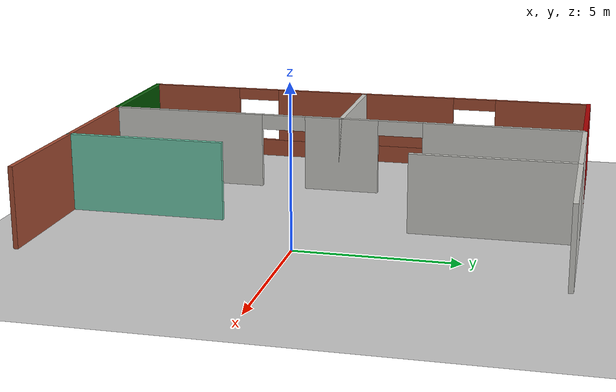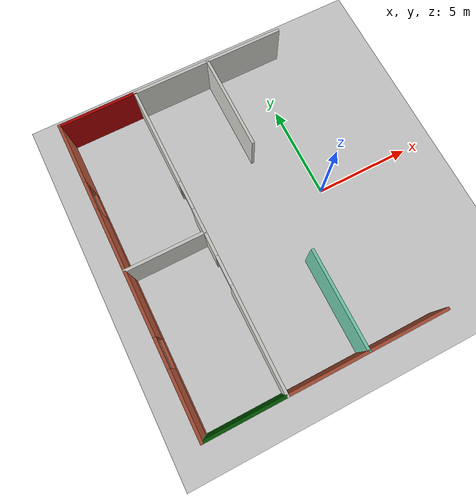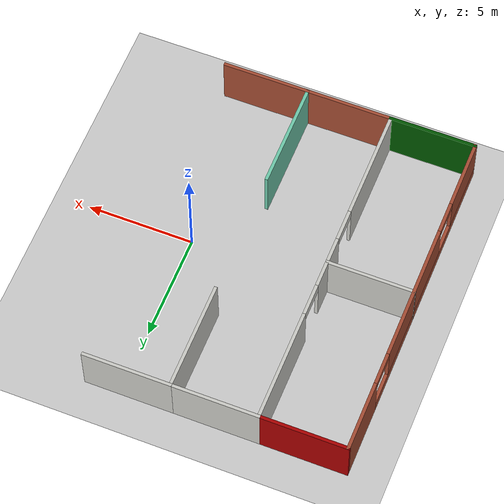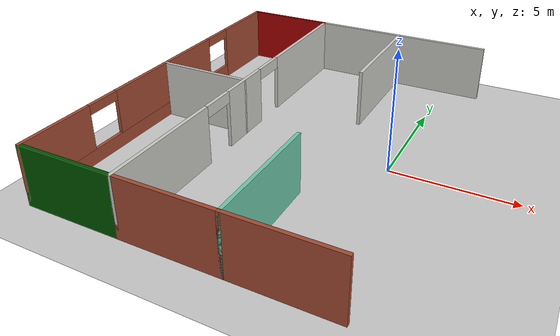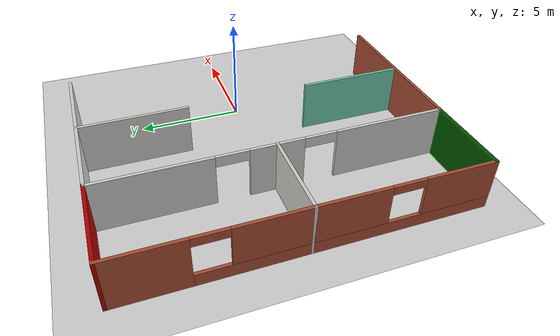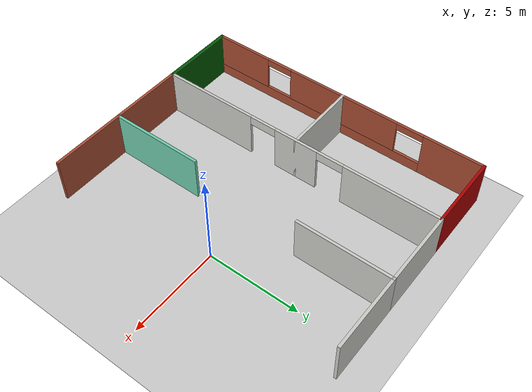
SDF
<sdf version="1.6">
 <world name="default">
  <model name="ground_plane">
   <static>1</static>
   <link name="link">
    <collision name="collision">
     <geometry><plane><normal>0 0 1</normal><size>100 100</size></plane></geometry>
     <surface>
      <contact><collide_bitmask>65535</collide_bitmask></contact>
      <friction><ode><mu>100</mu><mu2>50</mu2></ode></friction>
     </surface>
    </collision>
    <visual name="visual">
     <cast_shadows>0</cast_shadows>
     <geometry><plane><normal>0 0 1</normal><size>100 100</size></plane></geometry>
     <material>
      <script><uri>file://media/materials/scripts/gazebo.material</uri><name>Gazebo/Grey</name></script>
     </material>
    </visual>
   </link>
  </model>
  <model name="Project_building">
   <link name="Wall_0">
    <pose>-8 8 0 0 -0 3.14159</pose>
    <visual name="Wall_0_Visual">
     <pose>0 0 1.25 0 -0 0</pose>
     <geometry><box><size>4.15 0.15 2.5</size></box></geometry>
     <material>
      <script><uri>file://media/materials/scripts/gazebo.material</uri><name>Gazebo/Grey</name></script>
      <ambient>0.666667 0 0 1</ambient>
      <shader type="pixel"/>
      <diffuse>0.7 0.7 0.7 1</diffuse>
      <specular>0.01 0.01 0.01 1</specular>
      <emissive>0 0 0 1</emissive>
     </material>
     <meta><layer>0</layer></meta>
    </visual>
    <collision name="Wall_0_Collision">
     <pose>0 0 1.25 0 -0 0</pose>
     <geometry><box><size>4.15 0.15 2.5</size></box></geometry>
     <surface>
      <friction>
       <ode><mu>1</mu><mu2>1</mu2><fdir1>0 0 0</fdir1><slip1>0</slip1><slip2>0</slip2></ode>
       <torsional>
        <coefficient>1</coefficient>
        <patch_radius>0</patch_radius>
        <surface_radius>0</surface_radius>
        <use_patch_radius>1</use_patch_radius>
        <ode><slip>0</slip></ode>
       </torsional>
      </friction>
      <bounce><restitution_coefficient>0</restitution_coefficient><threshold>1e+06</threshold></bounce>
      <contact>
       <collide_without_contact>0</collide_without_contact>
       <collide_without_contact_bitmask>1</collide_without_contact_bitmask>
       <collide_bitmask>1</collide_bitmask>
       <ode>
        <soft_cfm>0</soft_cfm>
        <soft_erp>0.2</soft_erp>
        <kp>1e+13</kp>
        <kd>1</kd>
        <max_vel>0.01</max_vel>
        <min_depth>0</min_depth>
       </ode>
       <bullet>
        <split_impulse>1</split_impulse>
        <split_impulse_penetration_threshold>-0.01</split_impulse_penetration_threshold>
        <soft_cfm>0</soft_cfm>
        <soft_erp>0.2</soft_erp>
        <kp>1e+13</kp>
        <kd>1</kd>
       </bullet>
      </contact>
     </surface>
    </collision>
   </link>
   <link name="Wall_10">
    <pose>-8 -8 0 0 -0 0</pose>
    <visual name="Wall_10_Visual">
     <pose>0 0 1.25 0 -0 0</pose>
     <geometry><box><size>4.15 0.15 2.5</size></box></geometry>
     <material>
      <script><uri>file://media/materials/scripts/gazebo.material</uri><name>Gazebo/Grey</name></script>
      <ambient>0 0.333333 0 1</ambient>
      <shader type="pixel"/>
      <diffuse>0.7 0.7 0.7 1</diffuse>
      <specular>0.01 0.01 0.01 1</specular>
      <emissive>0 0 0 1</emissive>
     </material>
     <meta><layer>0</layer></meta>
    </visual>
    <collision name="Wall_10_Collision">
     <pose>0 0 1.25 0 -0 0</pose>
     <geometry><box><size>4.15 0.15 2.5</size></box></geometry>
     <surface>
      <friction>
       <ode><mu>1</mu><mu2>1</mu2><fdir1>0 0 0</fdir1><slip1>0</slip1><slip2>0</slip2></ode>
       <torsional>
        <coefficient>1</coefficient>
        <patch_radius>0</patch_radius>
        <surface_radius>0</surface_radius>
        <use_patch_radius>1</use_patch_radius>
        <ode><slip>0</slip></ode>
       </torsional>
      </friction>
      <bounce><restitution_coefficient>0</restitution_coefficient><threshold>1e+06</threshold></bounce>
      <contact>
       <collide_without_contact>0</collide_without_contact>
       <collide_without_contact_bitmask>1</collide_without_contact_bitmask>
       <collide_bitmask>1</collide_bitmask>
       <ode>
        <soft_cfm>0</soft_cfm>
        <soft_erp>0.2</soft_erp>
        <kp>1e+13</kp>
        <kd>1</kd>
        <max_vel>0.01</max_vel>
        <min_depth>0</min_depth>
       </ode>
       <bullet>
        <split_impulse>1</split_impulse>
        <split_impulse_penetration_threshold>-0.01</split_impulse_penetration_threshold>
        <soft_cfm>0</soft_cfm>
        <soft_erp>0.2</soft_erp>
        <kp>1e+13</kp>
        <kd>1</kd>
       </bullet>
      </contact>
     </surface>
    </collision>
   </link>
   <link name="Wall_12">
    <pose>-4 -8 0 0 -0 0</pose>
    <visual name="Wall_12_Visual">
     <pose>0 0 1.25 0 -0 0</pose>
     <geometry><box><size>4.15 0.15 2.5</size></box></geometry>
     <material>
      <script><uri>file://media/materials/scripts/gazebo.material</uri><name>Gazebo/Bricks</name></script>
      <ambient>0.333333 0 0 1</ambient>
      <shader type="pixel"/>
      <diffuse>1 1 1 1</diffuse>
      <specular>0.2 0.2 0.2 1</specular>
      <emissive>0 0 0 1</emissive>
     </material>
     <meta><layer>0</layer></meta>
    </visual>
    <collision name="Wall_12_Collision">
     <pose>0 0 1.25 0 -0 0</pose>
     <geometry><box><size>4.15 0.15 2.5</size></box></geometry>
     <surface>
      <friction>
       <ode><mu>1</mu><mu2>1</mu2><fdir1>0 0 0</fdir1><slip1>0</slip1><slip2>0</slip2></ode>
       <torsional>
        <coefficient>1</coefficient>
        <patch_radius>0</patch_radius>
        <surface_radius>0</surface_radius>
        <use_patch_radius>1</use_patch_radius>
        <ode><slip>0</slip></ode>
       </torsional>
      </friction>
      <bounce><restitution_coefficient>0</restitution_coefficient><threshold>1e+06</threshold></bounce>
      <contact>
       <collide_without_contact>0</collide_without_contact>
       <collide_without_contact_bitmask>1</collide_without_contact_bitmask>
       <collide_bitmask>1</collide_bitmask>
       <ode>
        <soft_cfm>0</soft_cfm>
        <soft_erp>0.2</soft_erp>
        <kp>1e+13</kp>
        <kd>1</kd>
        <max_vel>0.01</max_vel>
        <min_depth>0</min_depth>
       </ode>
       <bullet>
        <split_impulse>1</split_impulse>
        <split_impulse_penetration_threshold>-0.01</split_impulse_penetration_threshold>
        <soft_cfm>0</soft_cfm>
        <soft_erp>0.2</soft_erp>
        <kp>1e+13</kp>
        <kd>1</kd>
       </bullet>
      </contact>
     </surface>
    </collision>
   </link>
   <link name="Wall_14">
    <pose>0 -8 0 0 -0 0</pose>
    <visual name="Wall_14_Visual">
     <pose>0 0 1.25 0 -0 0</pose>
     <geometry><box><size>4.15 0.15 2.5</size></box></geometry>
     <material>
      <script><uri>file://media/materials/scripts/gazebo.material</uri><name>Gazebo/Bricks</name></script>
      <ambient>1 1 1 1</ambient>
      <shader type="pixel"/>
      <diffuse>1 1 1 1</diffuse>
      <specular>0.2 0.2 0.2 1</specular>
      <emissive>0 0 0 1</emissive>
     </material>
     <meta><layer>0</layer></meta>
    </visual>
    <collision name="Wall_14_Collision">
     <pose>0 0 1.25 0 -0 0</pose>
     <geometry><box><size>4.15 0.15 2.5</size></box></geometry>
     <surface>
      <friction>
       <ode><mu>1</mu><mu2>1</mu2><fdir1>0 0 0</fdir1><slip1>0</slip1><slip2>0</slip2></ode>
       <torsional>
        <coefficient>1</coefficient>
        <patch_radius>0</patch_radius>
        <surface_radius>0</surface_radius>
        <use_patch_radius>1</use_patch_radius>
        <ode><slip>0</slip></ode>
       </torsional>
      </friction>
      <bounce><restitution_coefficient>0</restitution_coefficient><threshold>1e+06</threshold></bounce>
      <contact>
       <collide_without_contact>0</collide_without_contact>
       <collide_without_contact_bitmask>1</collide_without_contact_bitmask>
       <collide_bitmask>1</collide_bitmask>
       <ode>
        <soft_cfm>0</soft_cfm>
        <soft_erp>0.2</soft_erp>
        <kp>1e+13</kp>
        <kd>1</kd>
        <max_vel>0.01</max_vel>
        <min_depth>0</min_depth>
       </ode>
       <bullet>
        <split_impulse>1</split_impulse>
        <split_impulse_penetration_threshold>-0.01</split_impulse_penetration_threshold>
        <soft_cfm>0</soft_cfm>
        <soft_erp>0.2</soft_erp>
        <kp>1e+13</kp>
        <kd>1</kd>
       </bullet>
      </contact>
     </surface>
    </collision>
   </link>
   <link name="Wall_2">
    <pose>-4 8 0 0 -0 3.14159</pose>
    <visual name="Wall_2_Visual">
     <pose>0 0 1.25 0 -0 0</pose>
     <geometry><box><size>4.15 0.15 2.5</size></box></geometry>
     <material>
      <script><uri>file://media/materials/scripts/gazebo.material</uri><name>Gazebo/CeilingTiled</name></script>
      <ambient>0 0 0.498039 1</ambient>
      <shader type="pixel"/>
      <diffuse>1 1 1 1</diffuse>
      <specular>0 0 0 1</specular>
      <emissive>0 0 0 1</emissive>
     </material>
     <meta><layer>0</layer></meta>
    </visual>
    <collision name="Wall_2_Collision">
     <pose>0 0 1.25 0 -0 0</pose>
     <geometry><box><size>4.15 0.15 2.5</size></box></geometry>
     <surface>
      <friction>
       <ode><mu>1</mu><mu2>1</mu2><fdir1>0 0 0</fdir1><slip1>0</slip1><slip2>0</slip2></ode>
       <torsional>
        <coefficient>1</coefficient>
        <patch_radius>0</patch_radius>
        <surface_radius>0</surface_radius>
        <use_patch_radius>1</use_patch_radius>
        <ode><slip>0</slip></ode>
       </torsional>
      </friction>
      <bounce><restitution_coefficient>0</restitution_coefficient><threshold>1e+06</threshold></bounce>
      <contact>
       <collide_without_contact>0</collide_without_contact>
       <collide_without_contact_bitmask>1</collide_without_contact_bitmask>
       <collide_bitmask>1</collide_bitmask>
       <ode>
        <soft_cfm>0</soft_cfm>
        <soft_erp>0.2</soft_erp>
        <kp>1e+13</kp>
        <kd>1</kd>
        <max_vel>0.01</max_vel>
        <min_depth>0</min_depth>
       </ode>
       <bullet>
        <split_impulse>1</split_impulse>
        <split_impulse_penetration_threshold>-0.01</split_impulse_penetration_threshold>
        <soft_cfm>0</soft_cfm>
        <soft_erp>0.2</soft_erp>
        <kp>1e+13</kp>
        <kd>1</kd>
       </bullet>
      </contact>
     </surface>
    </collision>
   </link>
   <link name="Wall_22">
    <pose>-10 0 0 0 0 -1.5708</pose>
    <visual name="Wall_22_Visual_0">
     <pose>-6.4125 0 1.25 0 -0 0</pose>
     <geometry><box><size>3.325 0.15 2.5</size></box></geometry>
     <material>
      <script><uri>file://media/materials/scripts/gazebo.material</uri><name>Gazebo/Bricks</name></script>
      <ambient>1 1 1 1</ambient>
      <shader type="pixel"/>
      <diffuse>1 1 1 1</diffuse>
      <specular>0.2 0.2 0.2 1</specular>
      <emissive>0 0 0 1</emissive>
     </material>
     <meta><layer>0</layer></meta>
    </visual>
    <visual name="Wall_22_Visual_1">
     <pose>1.6625 0 0.3 0 -0 0</pose>
     <geometry><box><size>12.825 0.15 0.6</size></box></geometry>
     <material>
      <script><uri>file://media/materials/scripts/gazebo.material</uri><name>Gazebo/Bricks</name></script>
      <ambient>1 1 1 1</ambient>
      <shader type="pixel"/>
      <diffuse>1 1 1 1</diffuse>
      <specular>0.2 0.2 0.2 1</specular>
      <emissive>0 0 0 1</emissive>
     </material>
     <meta><layer>0</layer></meta>
    </visual>
    <visual name="Wall_22_Visual_2">
     <pose>0 0 1.55 0 -0 0</pose>
     <geometry><box><size>6.5 0.15 1.9</size></box></geometry>
     <material>
      <script><uri>file://media/materials/scripts/gazebo.material</uri><name>Gazebo/Bricks</name></script>
      <ambient>1 1 1 1</ambient>
      <shader type="pixel"/>
      <diffuse>1 1 1 1</diffuse>
      <specular>0.2 0.2 0.2 1</specular>
      <emissive>0 0 0 1</emissive>
     </material>
     <meta><layer>0</layer></meta>
    </visual>
    <visual name="Wall_22_Visual_3">
     <pose>6.4125 0 1.55 0 -0 0</pose>
     <geometry><box><size>3.325 0.15 1.9</size></box></geometry>
     <material>
      <script><uri>file://media/materials/scripts/gazebo.material</uri><name>Gazebo/Bricks</name></script>
      <ambient>1 1 1 1</ambient>
      <shader type="pixel"/>
      <diffuse>1 1 1 1</diffuse>
      <specular>0.2 0.2 0.2 1</specular>
      <emissive>0 0 0 1</emissive>
     </material>
     <meta><layer>0</layer></meta>
    </visual>
    <visual name="Wall_22_Visual_4">
     <pose>-4 0 2.3 0 -0 0</pose>
     <geometry><box><size>1.5 0.15 0.4</size></box></geometry>
     <material>
      <script><uri>file://media/materials/scripts/gazebo.material</uri><name>Gazebo/Bricks</name></script>
      <ambient>1 1 1 1</ambient>
      <shader type="pixel"/>
      <diffuse>1 1 1 1</diffuse>
      <specular>0.2 0.2 0.2 1</specular>
      <emissive>0 0 0 1</emissive>
     </material>
     <meta><layer>0</layer></meta>
    </visual>
    <visual name="Wall_22_Visual_5">
     <pose>4 0 2.3 0 -0 0</pose>
     <geometry><box><size>1.5 0.15 0.4</size></box></geometry>
     <material>
      <script><uri>file://media/materials/scripts/gazebo.material</uri><name>Gazebo/Bricks</name></script>
      <ambient>1 1 1 1</ambient>
      <shader type="pixel"/>
      <diffuse>1 1 1 1</diffuse>
      <specular>0.2 0.2 0.2 1</specular>
      <emissive>0 0 0 1</emissive>
     </material>
     <meta><layer>0</layer></meta>
    </visual>
    <collision name="Wall_22_Collision_0">
     <pose>-6.4125 0 1.25 0 -0 0</pose>
     <geometry><box><size>3.325 0.15 2.5</size></box></geometry>
     <surface>
      <friction>
       <ode><mu>1</mu><mu2>1</mu2><fdir1>0 0 0</fdir1><slip1>0</slip1><slip2>0</slip2></ode>
       <torsional>
        <coefficient>1</coefficient>
        <patch_radius>0</patch_radius>
        <surface_radius>0</surface_radius>
        <use_patch_radius>1</use_patch_radius>
        <ode><slip>0</slip></ode>
       </torsional>
      </friction>
      <bounce><restitution_coefficient>0</restitution_coefficient><threshold>1e+06</threshold></bounce>
      <contact>
       <collide_without_contact>0</collide_without_contact>
       <collide_without_contact_bitmask>1</collide_without_contact_bitmask>
       <collide_bitmask>1</collide_bitmask>
       <ode>
        <soft_cfm>0</soft_cfm>
        <soft_erp>0.2</soft_erp>
        <kp>1e+13</kp>
        <kd>1</kd>
        <max_vel>0.01</max_vel>
        <min_depth>0</min_depth>
       </ode>
       <bullet>
        <split_impulse>1</split_impulse>
        <split_impulse_penetration_threshold>-0.01</split_impulse_penetration_threshold>
        <soft_cfm>0</soft_cfm>
        <soft_erp>0.2</soft_erp>
        <kp>1e+13</kp>
        <kd>1</kd>
       </bullet>
      </contact>
     </surface>
    </collision>
    <collision name="Wall_22_Collision_1">
     <pose>1.6625 0 0.3 0 -0 0</pose>
     <geometry><box><size>12.825 0.15 0.6</size></box></geometry>
     <surface>
      <friction>
       <ode><mu>1</mu><mu2>1</mu2><fdir1>0 0 0</fdir1><slip1>0</slip1><slip2>0</slip2></ode>
       <torsional>
        <coefficient>1</coefficient>
        <patch_radius>0</patch_radius>
        <surface_radius>0</surface_radius>
        <use_patch_radius>1</use_patch_radius>
        <ode><slip>0</slip></ode>
       </torsional>
      </friction>
      <bounce><restitution_coefficient>0</restitution_coefficient><threshold>1e+06</threshold></bounce>
      <contact>
       <collide_without_contact>0</collide_without_contact>
       <collide_without_contact_bitmask>1</collide_without_contact_bitmask>
       <collide_bitmask>1</collide_bitmask>
       <ode>
        <soft_cfm>0</soft_cfm>
        <soft_erp>0.2</soft_erp>
        <kp>1e+13</kp>
        <kd>1</kd>
        <max_vel>0.01</max_vel>
        <min_depth>0</min_depth>
       </ode>
       <bullet>
        <split_impulse>1</split_impulse>
        <split_impulse_penetration_threshold>-0.01</split_impulse_penetration_threshold>
        <soft_cfm>0</soft_cfm>
        <soft_erp>0.2</soft_erp>
        <kp>1e+13</kp>
        <kd>1</kd>
       </bullet>
      </contact>
     </surface>
    </collision>
    <collision name="Wall_22_Collision_2">
     <pose>0 0 1.55 0 -0 0</pose>
     <geometry><box><size>6.5 0.15 1.9</size></box></geometry>
     <surface>
      <friction>
       <ode><mu>1</mu><mu2>1</mu2><fdir1>0 0 0</fdir1><slip1>0</slip1><slip2>0</slip2></ode>
       <torsional>
        <coefficient>1</coefficient>
        <patch_radius>0</patch_radius>
        <surface_radius>0</surface_radius>
        <use_patch_radius>1</use_patch_radius>
        <ode><slip>0</slip></ode>
       </torsional>
      </friction>
      <bounce><restitution_coefficient>0</restitution_coefficient><threshold>1e+06</threshold></bounce>
      <contact>
       <collide_without_contact>0</collide_without_contact>
       <collide_without_contact_bitmask>1</collide_without_contact_bitmask>
       <collide_bitmask>1</collide_bitmask>
       <ode>
        <soft_cfm>0</soft_cfm>
        <soft_erp>0.2</soft_erp>
        <kp>1e+13</kp>
        <kd>1</kd>
        <max_vel>0.01</max_vel>
        <min_depth>0</min_depth>
       </ode>
       <bullet>
        <split_impulse>1</split_impulse>
        <split_impulse_penetration_threshold>-0.01</split_impulse_penetration_threshold>
        <soft_cfm>0</soft_cfm>
        <soft_erp>0.2</soft_erp>
        <kp>1e+13</kp>
        <kd>1</kd>
       </bullet>
      </contact>
     </surface>
    </collision>
    <collision name="Wall_22_Collision_3">
     <pose>6.4125 0 1.55 0 -0 0</pose>
     <geometry><box><size>3.325 0.15 1.9</size></box></geometry>
     <surface>
      <friction>
       <ode><mu>1</mu><mu2>1</mu2><fdir1>0 0 0</fdir1><slip1>0</slip1><slip2>0</slip2></ode>
       <torsional>
        <coefficient>1</coefficient>
        <patch_radius>0</patch_radius>
        <surface_radius>0</surface_radius>
        <use_patch_radius>1</use_patch_radius>
        <ode><slip>0</slip></ode>
       </torsional>
      </friction>
      <bounce><restitution_coefficient>0</restitution_coefficient><threshold>1e+06</threshold></bounce>
      <contact>
       <collide_without_contact>0</collide_without_contact>
       <collide_without_contact_bitmask>1</collide_without_contact_bitmask>
       <collide_bitmask>1</collide_bitmask>
       <ode>
        <soft_cfm>0</soft_cfm>
        <soft_erp>0.2</soft_erp>
        <kp>1e+13</kp>
        <kd>1</kd>
        <max_vel>0.01</max_vel>
        <min_depth>0</min_depth>
       </ode>
       <bullet>
        <split_impulse>1</split_impulse>
        <split_impulse_penetration_threshold>-0.01</split_impulse_penetration_threshold>
        <soft_cfm>0</soft_cfm>
        <soft_erp>0.2</soft_erp>
        <kp>1e+13</kp>
        <kd>1</kd>
       </bullet>
      </contact>
     </surface>
    </collision>
    <collision name="Wall_22_Collision_4">
     <pose>-4 0 2.3 0 -0 0</pose>
     <geometry><box><size>1.5 0.15 0.4</size></box></geometry>
     <surface>
      <friction>
       <ode><mu>1</mu><mu2>1</mu2><fdir1>0 0 0</fdir1><slip1>0</slip1><slip2>0</slip2></ode>
       <torsional>
        <coefficient>1</coefficient>
        <patch_radius>0</patch_radius>
        <surface_radius>0</surface_radius>
        <use_patch_radius>1</use_patch_radius>
        <ode><slip>0</slip></ode>
       </torsional>
      </friction>
      <bounce><restitution_coefficient>0</restitution_coefficient><threshold>1e+06</threshold></bounce>
      <contact>
       <collide_without_contact>0</collide_without_contact>
       <collide_without_contact_bitmask>1</collide_without_contact_bitmask>
       <collide_bitmask>1</collide_bitmask>
       <ode>
        <soft_cfm>0</soft_cfm>
        <soft_erp>0.2</soft_erp>
        <kp>1e+13</kp>
        <kd>1</kd>
        <max_vel>0.01</max_vel>
        <min_depth>0</min_depth>
       </ode>
       <bullet>
        <split_impulse>1</split_impulse>
        <split_impulse_penetration_threshold>-0.01</split_impulse_penetration_threshold>
        <soft_cfm>0</soft_cfm>
        <soft_erp>0.2</soft_erp>
        <kp>1e+13</kp>
        <kd>1</kd>
       </bullet>
      </contact>
     </surface>
    </collision>
    <collision name="Wall_22_Collision_5">
     <pose>4 0 2.3 0 -0 0</pose>
     <geometry><box><size>1.5 0.15 0.4</size></box></geometry>
     <surface>
      <friction>
       <ode><mu>1</mu><mu2>1</mu2><fdir1>0 0 0</fdir1><slip1>0</slip1><slip2>0</slip2></ode>
       <torsional>
        <coefficient>1</coefficient>
        <patch_radius>0</patch_radius>
        <surface_radius>0</surface_radius>
        <use_patch_radius>1</use_patch_radius>
        <ode><slip>0</slip></ode>
       </torsional>
      </friction>
      <bounce><restitution_coefficient>0</restitution_coefficient><threshold>1e+06</threshold></bounce>
      <contact>
       <collide_without_contact>0</collide_without_contact>
       <collide_without_contact_bitmask>1</collide_without_contact_bitmask>
       <collide_bitmask>1</collide_bitmask>
       <ode>
        <soft_cfm>0</soft_cfm>
        <soft_erp>0.2</soft_erp>
        <kp>1e+13</kp>
        <kd>1</kd>
        <max_vel>0.01</max_vel>
        <min_depth>0</min_depth>
       </ode>
       <bullet>
        <split_impulse>1</split_impulse>
        <split_impulse_penetration_threshold>-0.01</split_impulse_penetration_threshold>
        <soft_cfm>0</soft_cfm>
        <soft_erp>0.2</soft_erp>
        <kp>1e+13</kp>
        <kd>1</kd>
       </bullet>
      </contact>
     </surface>
    </collision>
   </link>
   <link name="Wall_24">
    <pose>-8 0 0 0 -0 0</pose>
    <visual name="Wall_24_Visual">
     <pose>0 0 1.25 0 -0 0</pose>
     <geometry><box><size>4.15 0.15 2.5</size></box></geometry>
     <material>
      <script><uri>file://media/materials/scripts/gazebo.material</uri><name>Gazebo/CeilingTiled</name></script>
      <ambient>0.996078 0.47451 0.0196078 1</ambient>
      <shader type="pixel"/>
      <diffuse>1 1 1 1</diffuse>
      <specular>0 0 0 1</specular>
      <emissive>0 0 0 1</emissive>
     </material>
     <meta><layer>0</layer></meta>
    </visual>
    <collision name="Wall_24_Collision">
     <pose>0 0 1.25 0 -0 0</pose>
     <geometry><box><size>4.15 0.15 2.5</size></box></geometry>
     <surface>
      <friction>
       <ode><mu>1</mu><mu2>1</mu2><fdir1>0 0 0</fdir1><slip1>0</slip1><slip2>0</slip2></ode>
       <torsional>
        <coefficient>1</coefficient>
        <patch_radius>0</patch_radius>
        <surface_radius>0</surface_radius>
        <use_patch_radius>1</use_patch_radius>
        <ode><slip>0</slip></ode>
       </torsional>
      </friction>
      <bounce><restitution_coefficient>0</restitution_coefficient><threshold>1e+06</threshold></bounce>
      <contact>
       <collide_without_contact>0</collide_without_contact>
       <collide_without_contact_bitmask>1</collide_without_contact_bitmask>
       <collide_bitmask>1</collide_bitmask>
       <ode>
        <soft_cfm>0</soft_cfm>
        <soft_erp>0.2</soft_erp>
        <kp>1e+13</kp>
        <kd>1</kd>
        <max_vel>0.01</max_vel>
        <min_depth>0</min_depth>
       </ode>
       <bullet>
        <split_impulse>1</split_impulse>
        <split_impulse_penetration_threshold>-0.01</split_impulse_penetration_threshold>
        <soft_cfm>0</soft_cfm>
        <soft_erp>0.2</soft_erp>
        <kp>1e+13</kp>
        <kd>1</kd>
       </bullet>
      </contact>
     </surface>
    </collision>
   </link>
   <link name="Wall_30">
    <pose>-6 0 0 0 0 -1.5708</pose>
    <visual name="Wall_30_Visual_0">
     <pose>-5.4125 0 1.25 0 -0 0</pose>
     <geometry><box><size>5.325 0.15 2.5</size></box></geometry>
     <material>
      <script><uri>file://media/materials/scripts/gazebo.material</uri><name>Gazebo/CeilingTiled</name></script>
      <ambient>0.921569 0.807843 0.615686 1</ambient>
      <shader type="pixel"/>
      <diffuse>1 1 1 1</diffuse>
      <specular>0 0 0 1</specular>
      <emissive>0 0 0 1</emissive>
     </material>
     <meta><layer>0</layer></meta>
    </visual>
    <visual name="Wall_30_Visual_1">
     <pose>0 0 1.25 0 -0 0</pose>
     <geometry><box><size>2.5 0.15 2.5</size></box></geometry>
     <material>
      <script><uri>file://media/materials/scripts/gazebo.material</uri><name>Gazebo/CeilingTiled</name></script>
      <ambient>0.921569 0.807843 0.615686 1</ambient>
      <shader type="pixel"/>
      <diffuse>1 1 1 1</diffuse>
      <specular>0 0 0 1</specular>
      <emissive>0 0 0 1</emissive>
     </material>
     <meta><layer>0</layer></meta>
    </visual>
    <visual name="Wall_30_Visual_2">
     <pose>5.4125 0 1.25 0 -0 0</pose>
     <geometry><box><size>5.325 0.15 2.5</size></box></geometry>
     <material>
      <script><uri>file://media/materials/scripts/gazebo.material</uri><name>Gazebo/CeilingTiled</name></script>
      <ambient>0.921569 0.807843 0.615686 1</ambient>
      <shader type="pixel"/>
      <diffuse>1 1 1 1</diffuse>
      <specular>0 0 0 1</specular>
      <emissive>0 0 0 1</emissive>
     </material>
     <meta><layer>0</layer></meta>
    </visual>
    <visual name="Wall_30_Visual_3">
     <pose>-2 0 2.25 0 -0 0</pose>
     <geometry><box><size>1.5 0.15 0.5</size></box></geometry>
     <material>
      <script><uri>file://media/materials/scripts/gazebo.material</uri><name>Gazebo/CeilingTiled</name></script>
      <ambient>0.921569 0.807843 0.615686 1</ambient>
      <shader type="pixel"/>
      <diffuse>1 1 1 1</diffuse>
      <specular>0 0 0 1</specular>
      <emissive>0 0 0 1</emissive>
     </material>
     <meta><layer>0</layer></meta>
    </visual>
    <visual name="Wall_30_Visual_4">
     <pose>2 0 2.25 0 -0 0</pose>
     <geometry><box><size>1.5 0.15 0.5</size></box></geometry>
     <material>
      <script><uri>file://media/materials/scripts/gazebo.material</uri><name>Gazebo/CeilingTiled</name></script>
      <ambient>0.921569 0.807843 0.615686 1</ambient>
      <shader type="pixel"/>
      <diffuse>1 1 1 1</diffuse>
      <specular>0 0 0 1</specular>
      <emissive>0 0 0 1</emissive>
     </material>
     <meta><layer>0</layer></meta>
    </visual>
    <collision name="Wall_30_Collision_0">
     <pose>-5.4125 0 1.25 0 -0 0</pose>
     <geometry><box><size>5.325 0.15 2.5</size></box></geometry>
     <surface>
      <friction>
       <ode><mu>1</mu><mu2>1</mu2><fdir1>0 0 0</fdir1><slip1>0</slip1><slip2>0</slip2></ode>
       <torsional>
        <coefficient>1</coefficient>
        <patch_radius>0</patch_radius>
        <surface_radius>0</surface_radius>
        <use_patch_radius>1</use_patch_radius>
        <ode><slip>0</slip></ode>
       </torsional>
      </friction>
      <bounce><restitution_coefficient>0</restitution_coefficient><threshold>1e+06</threshold></bounce>
      <contact>
       <collide_without_contact>0</collide_without_contact>
       <collide_without_contact_bitmask>1</collide_without_contact_bitmask>
       <collide_bitmask>1</collide_bitmask>
       <ode>
        <soft_cfm>0</soft_cfm>
        <soft_erp>0.2</soft_erp>
        <kp>1e+13</kp>
        <kd>1</kd>
        <max_vel>0.01</max_vel>
        <min_depth>0</min_depth>
       </ode>
       <bullet>
        <split_impulse>1</split_impulse>
        <split_impulse_penetration_threshold>-0.01</split_impulse_penetration_threshold>
        <soft_cfm>0</soft_cfm>
        <soft_erp>0.2</soft_erp>
        <kp>1e+13</kp>
        <kd>1</kd>
       </bullet>
      </contact>
     </surface>
    </collision>
    <collision name="Wall_30_Collision_1">
     <pose>0 0 1.25 0 -0 0</pose>
     <geometry><box><size>2.5 0.15 2.5</size></box></geometry>
     <surface>
      <friction>
       <ode><mu>1</mu><mu2>1</mu2><fdir1>0 0 0</fdir1><slip1>0</slip1><slip2>0</slip2></ode>
       <torsional>
        <coefficient>1</coefficient>
        <patch_radius>0</patch_radius>
        <surface_radius>0</surface_radius>
        <use_patch_radius>1</use_patch_radius>
        <ode><slip>0</slip></ode>
       </torsional>
      </friction>
      <bounce><restitution_coefficient>0</restitution_coefficient><threshold>1e+06</threshold></bounce>
      <contact>
       <collide_without_contact>0</collide_without_contact>
       <collide_without_contact_bitmask>1</collide_without_contact_bitmask>
       <collide_bitmask>1</collide_bitmask>
       <ode>
        <soft_cfm>0</soft_cfm>
        <soft_erp>0.2</soft_erp>
        <kp>1e+13</kp>
        <kd>1</kd>
        <max_vel>0.01</max_vel>
        <min_depth>0</min_depth>
       </ode>
       <bullet>
        <split_impulse>1</split_impulse>
        <split_impulse_penetration_threshold>-0.01</split_impulse_penetration_threshold>
        <soft_cfm>0</soft_cfm>
        <soft_erp>0.2</soft_erp>
        <kp>1e+13</kp>
        <kd>1</kd>
       </bullet>
      </contact>
     </surface>
    </collision>
    <collision name="Wall_30_Collision_2">
     <pose>5.4125 0 1.25 0 -0 0</pose>
     <geometry><box><size>5.325 0.15 2.5</size></box></geometry>
     <surface>
      <friction>
       <ode><mu>1</mu><mu2>1</mu2><fdir1>0 0 0</fdir1><slip1>0</slip1><slip2>0</slip2></ode>
       <torsional>
        <coefficient>1</coefficient>
        <patch_radius>0</patch_radius>
        <surface_radius>0</surface_radius>
        <use_patch_radius>1</use_patch_radius>
        <ode><slip>0</slip></ode>
       </torsional>
      </friction>
      <bounce><restitution_coefficient>0</restitution_coefficient><threshold>1e+06</threshold></bounce>
      <contact>
       <collide_without_contact>0</collide_without_contact>
       <collide_without_contact_bitmask>1</collide_without_contact_bitmask>
       <collide_bitmask>1</collide_bitmask>
       <ode>
        <soft_cfm>0</soft_cfm>
        <soft_erp>0.2</soft_erp>
        <kp>1e+13</kp>
        <kd>1</kd>
        <max_vel>0.01</max_vel>
        <min_depth>0</min_depth>
       </ode>
       <bullet>
        <split_impulse>1</split_impulse>
        <split_impulse_penetration_threshold>-0.01</split_impulse_penetration_threshold>
        <soft_cfm>0</soft_cfm>
        <soft_erp>0.2</soft_erp>
        <kp>1e+13</kp>
        <kd>1</kd>
       </bullet>
      </contact>
     </surface>
    </collision>
    <collision name="Wall_30_Collision_3">
     <pose>-2 0 2.25 0 -0 0</pose>
     <geometry><box><size>1.5 0.15 0.5</size></box></geometry>
     <surface>
      <friction>
       <ode><mu>1</mu><mu2>1</mu2><fdir1>0 0 0</fdir1><slip1>0</slip1><slip2>0</slip2></ode>
       <torsional>
        <coefficient>1</coefficient>
        <patch_radius>0</patch_radius>
        <surface_radius>0</surface_radius>
        <use_patch_radius>1</use_patch_radius>
        <ode><slip>0</slip></ode>
       </torsional>
      </friction>
      <bounce><restitution_coefficient>0</restitution_coefficient><threshold>1e+06</threshold></bounce>
      <contact>
       <collide_without_contact>0</collide_without_contact>
       <collide_without_contact_bitmask>1</collide_without_contact_bitmask>
       <collide_bitmask>1</collide_bitmask>
       <ode>
        <soft_cfm>0</soft_cfm>
        <soft_erp>0.2</soft_erp>
        <kp>1e+13</kp>
        <kd>1</kd>
        <max_vel>0.01</max_vel>
        <min_depth>0</min_depth>
       </ode>
       <bullet>
        <split_impulse>1</split_impulse>
        <split_impulse_penetration_threshold>-0.01</split_impulse_penetration_threshold>
        <soft_cfm>0</soft_cfm>
        <soft_erp>0.2</soft_erp>
        <kp>1e+13</kp>
        <kd>1</kd>
       </bullet>
      </contact>
     </surface>
    </collision>
    <collision name="Wall_30_Collision_4">
     <pose>2 0 2.25 0 -0 0</pose>
     <geometry><box><size>1.5 0.15 0.5</size></box></geometry>
     <surface>
      <friction>
       <ode><mu>1</mu><mu2>1</mu2><fdir1>0 0 0</fdir1><slip1>0</slip1><slip2>0</slip2></ode>
       <torsional>
        <coefficient>1</coefficient>
        <patch_radius>0</patch_radius>
        <surface_radius>0</surface_radius>
        <use_patch_radius>1</use_patch_radius>
        <ode><slip>0</slip></ode>
       </torsional>
      </friction>
      <bounce><restitution_coefficient>0</restitution_coefficient><threshold>1e+06</threshold></bounce>
      <contact>
       <collide_without_contact>0</collide_without_contact>
       <collide_without_contact_bitmask>1</collide_without_contact_bitmask>
       <collide_bitmask>1</collide_bitmask>
       <ode>
        <soft_cfm>0</soft_cfm>
        <soft_erp>0.2</soft_erp>
        <kp>1e+13</kp>
        <kd>1</kd>
        <max_vel>0.01</max_vel>
        <min_depth>0</min_depth>
       </ode>
       <bullet>
        <split_impulse>1</split_impulse>
        <split_impulse_penetration_threshold>-0.01</split_impulse_penetration_threshold>
        <soft_cfm>0</soft_cfm>
        <soft_erp>0.2</soft_erp>
        <kp>1e+13</kp>
        <kd>1</kd>
       </bullet>
      </contact>
     </surface>
    </collision>
   </link>
   <link name="Wall_32">
    <pose>-2 5.5 0 0 -0 1.5708</pose>
    <visual name="Wall_32_Visual">
     <pose>0 0 1.25 0 -0 0</pose>
     <geometry><box><size>5.15 0.15 2.5</size></box></geometry>
     <material>
      <script><uri>file://media/materials/scripts/gazebo.material</uri><name>Gazebo/CeilingTiled</name></script>
      <ambient>1 0.764706 0.305882 1</ambient>
      <shader type="pixel"/>
      <diffuse>1 1 1 1</diffuse>
      <specular>0 0 0 1</specular>
      <emissive>0 0 0 1</emissive>
     </material>
     <meta><layer>0</layer></meta>
    </visual>
    <collision name="Wall_32_Collision">
     <pose>0 0 1.25 0 -0 0</pose>
     <geometry><box><size>5.15 0.15 2.5</size></box></geometry>
     <surface>
      <friction>
       <ode><mu>1</mu><mu2>1</mu2><fdir1>0 0 0</fdir1><slip1>0</slip1><slip2>0</slip2></ode>
       <torsional>
        <coefficient>1</coefficient>
        <patch_radius>0</patch_radius>
        <surface_radius>0</surface_radius>
        <use_patch_radius>1</use_patch_radius>
        <ode><slip>0</slip></ode>
       </torsional>
      </friction>
      <bounce><restitution_coefficient>0</restitution_coefficient><threshold>1e+06</threshold></bounce>
      <contact>
       <collide_without_contact>0</collide_without_contact>
       <collide_without_contact_bitmask>1</collide_without_contact_bitmask>
       <collide_bitmask>1</collide_bitmask>
       <ode>
        <soft_cfm>0</soft_cfm>
        <soft_erp>0.2</soft_erp>
        <kp>1e+13</kp>
        <kd>1</kd>
        <max_vel>0.01</max_vel>
        <min_depth>0</min_depth>
       </ode>
       <bullet>
        <split_impulse>1</split_impulse>
        <split_impulse_penetration_threshold>-0.01</split_impulse_penetration_threshold>
        <soft_cfm>0</soft_cfm>
        <soft_erp>0.2</soft_erp>
        <kp>1e+13</kp>
        <kd>1</kd>
       </bullet>
      </contact>
     </surface>
    </collision>
   </link>
   <link name="Wall_38">
    <pose>-2 -5.5 0 0 0 -1.5708</pose>
    <visual name="Wall_38_Visual">
     <pose>0 0 1.25 0 -0 0</pose>
     <geometry><box><size>5.15 0.15 2.5</size></box></geometry>
     <material>
      <script><uri>file://media/materials/scripts/gazebo.material</uri><name>Gazebo/Grey</name></script>
      <ambient>0.435294 0.796078 0.67451 1</ambient>
      <shader type="pixel"/>
      <diffuse>0.7 0.7 0.7 1</diffuse>
      <specular>0.01 0.01 0.01 1</specular>
      <emissive>0 0 0 1</emissive>
     </material>
     <meta><layer>0</layer></meta>
    </visual>
    <collision name="Wall_38_Collision">
     <pose>0 0 1.25 0 -0 0</pose>
     <geometry><box><size>5.15 0.15 2.5</size></box></geometry>
     <surface>
      <friction>
       <ode><mu>1</mu><mu2>1</mu2><fdir1>0 0 0</fdir1><slip1>0</slip1><slip2>0</slip2></ode>
       <torsional>
        <coefficient>1</coefficient>
        <patch_radius>0</patch_radius>
        <surface_radius>0</surface_radius>
        <use_patch_radius>1</use_patch_radius>
        <ode><slip>0</slip></ode>
       </torsional>
      </friction>
      <bounce><restitution_coefficient>0</restitution_coefficient><threshold>1e+06</threshold></bounce>
      <contact>
       <collide_without_contact>0</collide_without_contact>
       <collide_without_contact_bitmask>1</collide_without_contact_bitmask>
       <collide_bitmask>1</collide_bitmask>
       <ode>
        <soft_cfm>0</soft_cfm>
        <soft_erp>0.2</soft_erp>
        <kp>1e+13</kp>
        <kd>1</kd>
        <max_vel>0.01</max_vel>
        <min_depth>0</min_depth>
       </ode>
       <bullet>
        <split_impulse>1</split_impulse>
        <split_impulse_penetration_threshold>-0.01</split_impulse_penetration_threshold>
        <soft_cfm>0</soft_cfm>
        <soft_erp>0.2</soft_erp>
        <kp>1e+13</kp>
        <kd>1</kd>
       </bullet>
      </contact>
     </surface>
    </collision>
   </link>
   <link name="Wall_4">
    <pose>0 8 0 0 -0 3.14159</pose>
    <visual name="Wall_4_Visual">
     <pose>0 0 1.25 0 -0 0</pose>
     <geometry><box><size>4.15 0.15 2.5</size></box></geometry>
     <material>
      <script><uri>file://media/materials/scripts/gazebo.material</uri><name>Gazebo/CeilingTiled</name></script>
      <ambient>0 1 0 1</ambient>
      <shader type="pixel"/>
      <diffuse>1 1 1 1</diffuse>
      <specular>0 0 0 1</specular>
      <emissive>0 0 0 1</emissive>
     </material>
     <meta><layer>0</layer></meta>
    </visual>
    <collision name="Wall_4_Collision">
     <pose>0 0 1.25 0 -0 0</pose>
     <geometry><box><size>4.15 0.15 2.5</size></box></geometry>
     <surface>
      <friction>
       <ode><mu>1</mu><mu2>1</mu2><fdir1>0 0 0</fdir1><slip1>0</slip1><slip2>0</slip2></ode>
       <torsional>
        <coefficient>1</coefficient>
        <patch_radius>0</patch_radius>
        <surface_radius>0</surface_radius>
        <use_patch_radius>1</use_patch_radius>
        <ode><slip>0</slip></ode>
       </torsional>
      </friction>
      <bounce><restitution_coefficient>0</restitution_coefficient><threshold>1e+06</threshold></bounce>
      <contact>
       <collide_without_contact>0</collide_without_contact>
       <collide_without_contact_bitmask>1</collide_without_contact_bitmask>
       <collide_bitmask>1</collide_bitmask>
       <ode>
        <soft_cfm>0</soft_cfm>
        <soft_erp>0.2</soft_erp>
        <kp>1e+13</kp>
        <kd>1</kd>
        <max_vel>0.01</max_vel>
        <min_depth>0</min_depth>
       </ode>
       <bullet>
        <split_impulse>1</split_impulse>
        <split_impulse_penetration_threshold>-0.01</split_impulse_penetration_threshold>
        <soft_cfm>0</soft_cfm>
        <soft_erp>0.2</soft_erp>
        <kp>1e+13</kp>
        <kd>1</kd>
       </bullet>
      </contact>
     </surface>
    </collision>
   </link>
   <static>1</static>
   <pose>-0.438517 0.078149 0 0 -0 0</pose>
  </model>
 </world>
</sdf>
